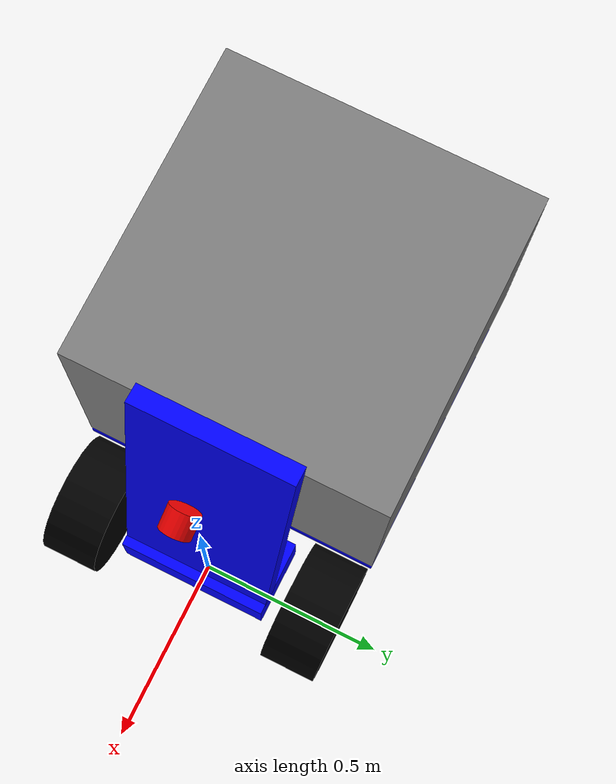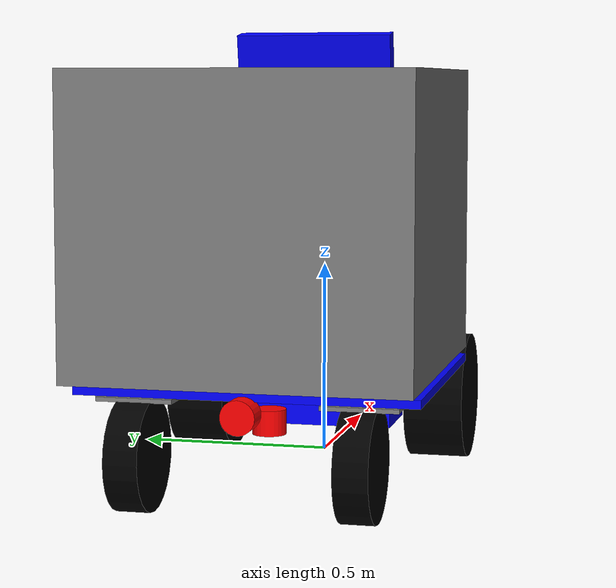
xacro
<?xml version="1.0"?>
<robot name="$(arg robot_ns)" xmlns:xacro="http://ros.org/wiki/xacro">
    <xacro:arg name="robot_ns" default="robot1"/>

  <!-- ========= PARAMÈTRES ========= -->
  <xacro:property name="base_length" value="0.2"/>
  <xacro:property name="base_width" value="0.4"/>
  <xacro:property name="base_height" value="0.15"/>
  <xacro:property name="wheel_radius" value="0.162"/>
  <xacro:property name="wheel_width" value="0.150"/>
  <xacro:property name="wheel_y" value="0.317"/>
  <xacro:property name="wheel_x" value="-0.15"/>
  <xacro:property name="wheel_z" value="${wheel_radius}"/>
  <xacro:property name="caster_radius" value="0.13"/>
  <xacro:property name="caster_width" value="0.08"/>
  <xacro:property name="caster_dx" value="-0.747"/>
  <xacro:property name="caster_dy" value="0.26"/>
  <xacro:property name="caster_plate_size" value="0.18"/>
  <xacro:property name="caster_plate_th" value="0.01"/>
  <xacro:property name="caster_z" value="${caster_radius + caster_plate_th/2}"/>
  <xacro:property name="sensor_radius" value="0.04"/>
  <xacro:property name="sensor_height" value="0.06"/>

  <!-- ========= MATÉRIAUX ========= -->
  <material name="black"><color rgba="0 0 0 1"/></material>
  <material name="grey"><color rgba="0.5 0.5 0.5 1"/></material>
  <material name="red"><color rgba="1 0 0 1"/></material>
  <material name="bleu"><color rgba="0 0 1 1"/></material>
  <material name="jaune"><color rgba="1 1 0 1"/></material>

  <!-- ========= FOOTPRINT ========= -->
  <link name="base_footprint"/>

  <!-- ========= BASE LINK ========= -->
  <link name="base_link">
    <visual>
      <geometry>
        <box size="${base_length} ${base_width} ${base_height}"/>
      </geometry>
      <origin xyz="-0.025 0 0"/>
      <material name="bleu"/>
    </visual>
    <collision>
      <geometry>
        <box size="${base_length} ${base_width} ${base_height}"/>
      </geometry>
      <origin xyz="-0.025 0 0"/>
    </collision>
    <inertial>
      <mass value="50.0"/>
      <origin xyz="-0.2 0 0.1"/>
      <inertia ixx="0.76" ixy="0" ixz="0" iyy="0.26" iyz="0" izz="0.833"/>
    </inertial>

    <!-- Grande plaque -->
    <visual>
      <geometry>
        <box size="0.7 0.8 0.02"/>
      </geometry>
      <origin xyz="-0.5 0 ${caster_radius * 2 + caster_plate_th / 2 - wheel_radius + 0.02}"/>
      <material name="bleu"/>
    </visual>
    <collision>
      <geometry>
        <box size="0.7 0.8 0.02"/>
      </geometry>
      <origin xyz="-0.5 0 ${caster_radius * 2 + caster_plate_th / 2 - wheel_radius + 0.02}"/>
    </collision>

    <!-- Boite -->
    <visual>
      <geometry>
        <box size="0.8 0.8 0.7"/>
      </geometry>
      <origin xyz="-0.55 0 0.5"/>
      <material name="grey"/>
    </visual>
    <collision>
      <geometry>
        <box size="0.8 0.8 0.7"/>
      </geometry>
      <origin xyz="-0.55 0 0.5"/>
    </collision>

    <!-- Plaque avant -->
    <visual>
      <geometry>
        <box size="0.9 ${base_width} ${base_height - 0.1}"/>
      </geometry>
      <origin xyz="-0.05 0 0.5" rpy="0 1.4 0"/>
      <material name="bleu"/>
    </visual>
    <collision>
      <geometry>
        <box size="0.9 ${base_width} ${base_height - 0.1}"/>
      </geometry>
      <origin xyz="-0.05 0 0.5" rpy="0 1.4 0"/>
    </collision>
  </link>

  <joint name="base_link_joint" type="fixed">
    <parent link="base_footprint"/>
    <child link="base_link"/>
    <origin xyz="0 0 ${wheel_z}"/>
  </joint>

  <!-- ========= MACRO ROUE MOTRICE ========= -->
  <xacro:macro name="drive_wheel" params="name sign">
    <link name="${name}_wheel_link">
      <visual>
        <geometry>
          <cylinder radius="${wheel_radius}" length="${wheel_width}"/>
        </geometry>
        <origin xyz="0 0 0" rpy="1.570796 0 0"/>
        <material name="black"/>
      </visual>
      <collision>
        <geometry>
          <cylinder radius="${wheel_radius}" length="${wheel_width}"/>
        </geometry>
        <origin xyz="0 0 0" rpy="1.570796 0 0"/>
        <surface>
          <friction>
            <ode>
              <mu>1.0</mu>
              <mu2>1.0</mu2>
            </ode>
          </friction>
        </surface>
      </collision>
      <inertial>
        <mass value="8.0"/>
        <origin xyz="0 0 0"/>
        <inertia ixx="0.1" ixy="0.0" ixz="0.0"
                 iyy="0.06" iyz="0.0"
                 izz="0.06"/>
      </inertial>
    </link>
    <joint name="${name}_wheel_joint" type="continuous">
      <parent link="base_link"/>
      <child link="${name}_wheel_link"/>
      <origin xyz="0 ${sign * wheel_y} 0"/>
      <axis xyz="0 1 0"/>
      <limit effort="50000" velocity="10"/>
      <dynamics damping="1.0" friction="1.0"/>
    </joint>
  </xacro:macro>

  <xacro:drive_wheel name="left"  sign=" 1"/>
  <xacro:drive_wheel name="right" sign="-1"/>

  <!-- ========= MACRO MODULE ROULETTE ========= -->
  <xacro:macro name="caster" params="side sign">
    <link name="${side}_caster_plate_link">
      <visual>
        <geometry>
          <box size="${caster_plate_size} ${caster_plate_size} ${caster_plate_th}"/>
        </geometry>
        <material name="grey"/>
      </visual>
      <collision>
        <geometry>
          <box size="${caster_plate_size} ${caster_plate_size} ${caster_plate_th}"/>
        </geometry>
      </collision>
      <inertial>
        <mass value="0.5"/>
        <origin xyz="0 0 0"/>
        <inertia ixx="0.001" ixy="0.0" ixz="0.0"
                 iyy="0.001" iyz="0.0"
                 izz="0.002"/>
      </inertial>
    </link>
    <joint name="${side}_caster_plate_joint" type="continuous">
      <parent link="base_link"/>
      <child link="${side}_caster_plate_link"/>
      <origin xyz="${caster_dx} ${sign * caster_dy} ${caster_radius * 2 + caster_plate_th / 2 - wheel_radius}"/>
      <axis xyz="0 0 1"/>
    </joint>
    <!-- petite roue -->
    <link name="${side}_caster_wheel_link">
      <visual>
        <geometry>
          <cylinder radius="${caster_radius}" length="${caster_width}"/>
        </geometry>
        <origin xyz="0 0 0" rpy="1.570796 0 0"/>
        <material name="black"/>
      </visual>
      <collision>
        <geometry>
          <cylinder radius="${caster_radius}" length="${caster_width}"/>
        </geometry>
        <origin xyz="0 0 0" rpy="1.570796 0 0"/>
      </collision>
      <inertial>
        <mass value="1.0"/>
        <origin xyz="0 0 0"/>
        <inertia ixx="0.0037" ixy="0.0" ixz="0.0"
                 iyy="0.0037" iyz="0.0"
                 izz="0.0010"/>
      </inertial>
    </link>
    <joint name="${side}_caster_wheel_joint" type="continuous">
      <parent link="${side}_caster_plate_link"/>
      <child link="${side}_caster_wheel_link"/>
      <origin xyz="-0.06 0 -${caster_radius}"/>
      <axis xyz="0 1 0"/>
    </joint>
  </xacro:macro>

  <xacro:caster side="left"  sign=" 1"/>
  <xacro:caster side="right" sign="-1"/>

  <!-- ========= MACRO CAPTEUR CYLINDRE AVEC ORIENTATION ========= -->
  <xacro:macro name="lidar_sensor" params="name origin_x origin_y origin_z origin_rpy">
    <link name="${name}_link">
      <visual>
        <geometry>
          <cylinder radius="${sensor_radius}" length="${sensor_height}"/>
        </geometry>
        <material name="red"/>
      </visual>
      <collision>
        <geometry>
          <cylinder radius="${sensor_radius}" length="${sensor_height}"/>
        </geometry>
      </collision>
      <inertial>
        <mass value="0.2"/>
        <origin xyz="0 0 0"/>
        <inertia ixx="0.0002" ixy="0.0" ixz="0.0" iyy="0.0002" iyz="0.0" izz="0.0002"/>
      </inertial>
    </link>
    <joint name="${name}_joint" type="fixed">
      <parent link="base_link"/>
      <child link="${name}_link"/>
      <origin xyz="${origin_x} ${origin_y} ${origin_z}" rpy="${origin_rpy}"/>
    </joint>
  </xacro:macro>

  <!-- ========= INSTANCES CAPTEURS ========= -->
  <xacro:lidar_sensor name="airy_front"   origin_x="0.05"  origin_y="0.0" origin_z="0.8" origin_rpy="0 2.0 0"/>
  <xacro:lidar_sensor name="jt16_center"  origin_x="-0.607" origin_y="0.0" origin_z="0.025" origin_rpy="0 3.14 0"/>
  <xacro:lidar_sensor name="airy_back"    origin_x="-0.870" origin_y="0.0" origin_z="0.085" origin_rpy="0 -1.57 0"/>

  <xacro:include filename="$(find hive_robot_description)/model/mk5_200.gazebo"/>
  <xacro:add_gazebo_tags robot_ns="$(arg robot_ns)"/>

</robot>
